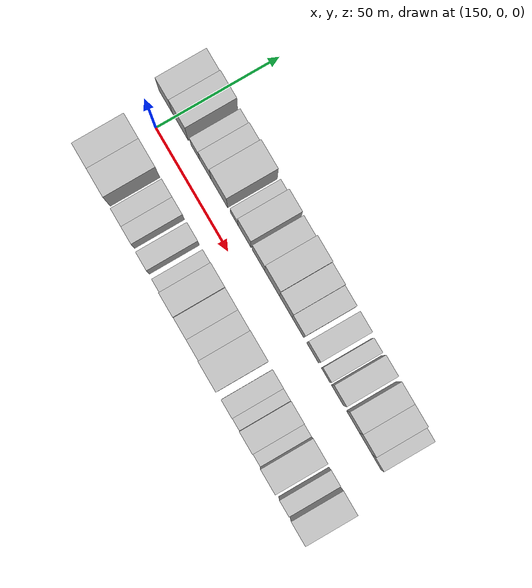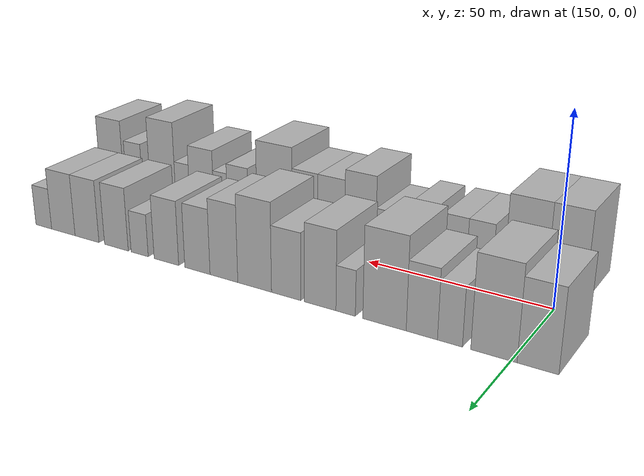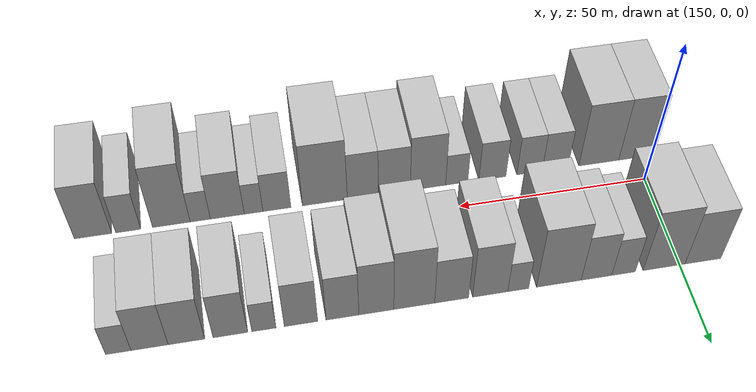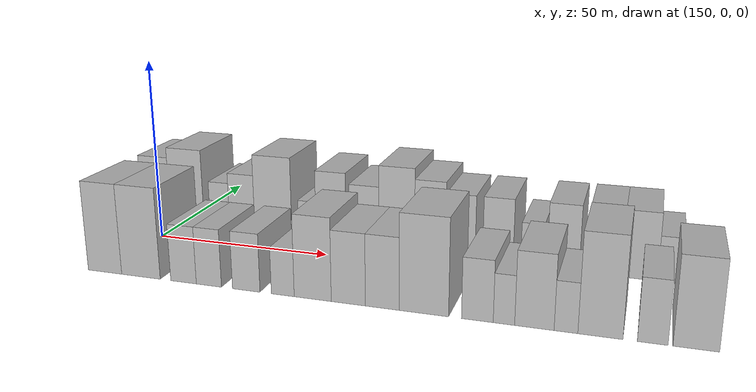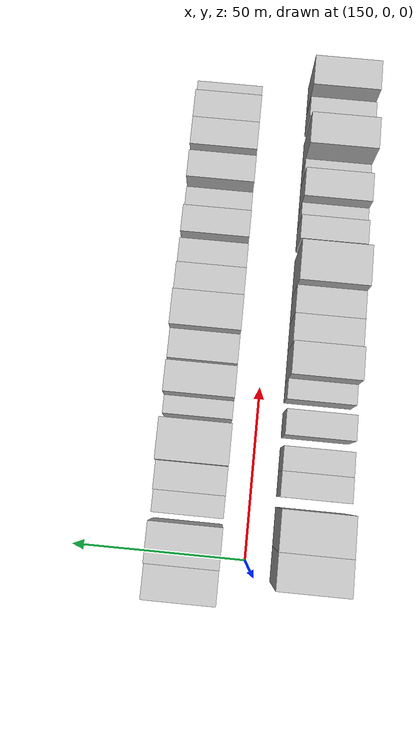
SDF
<sdf version="1.6">
 <world name="default">
  <model name="building_16">
   <static>1</static>
   <pose>143.8493 17.5000 0 0.000000 0.000000 1.570796</pose>
   <link name="link">
    <pose>0 0 10.50 0 0 0</pose>
    <collision name="collision"><geometry><box><size>20.0000 9.4239 21.0000</size></box></geometry></collision>
    <visual name="visual">
     <cast_shadows>0</cast_shadows>
     <geometry><box><size>20.0000 9.4239 21.0000</size></box></geometry>
     <material>
      <script>
       <uri>model://HANNAS_wall/materials/scripts</uri>
       <uri>model://HANNAS_wall/materials/textures</uri>
       <name>vrc/HANNAS_wall</name>
      </script>
     </material>
    </visual>
   </link>
  </model>
  <model name="building_17">
   <static>1</static>
   <pose>154.0123 17.5000 0 0.000000 0.000000 1.570796</pose>
   <link name="link">
    <pose>0 0 12.00 0 0 0</pose>
    <collision name="collision"><geometry><box><size>20.0000 10.9021 24.0000</size></box></geometry></collision>
    <visual name="visual">
     <cast_shadows>0</cast_shadows>
     <geometry><box><size>20.0000 10.9021 24.0000</size></box></geometry>
     <material>
      <script>
       <uri>model://HANNAS_wall/materials/scripts</uri>
       <uri>model://HANNAS_wall/materials/textures</uri>
       <name>vrc/HANNAS_wall</name>
      </script>
     </material>
    </visual>
   </link>
  </model>
  <model name="building_18">
   <static>1</static>
   <pose>164.5241 17.5000 0 0.000000 0.000000 1.570796</pose>
   <link name="link">
    <pose>0 0 7.50 0 0 0</pose>
    <collision name="collision"><geometry><box><size>20.0000 6.1215 15.0000</size></box></geometry></collision>
    <visual name="visual">
     <cast_shadows>0</cast_shadows>
     <geometry><box><size>20.0000 6.1215 15.0000</size></box></geometry>
     <material>
      <script>
       <uri>model://HANNAS_wall/materials/scripts</uri>
       <uri>model://HANNAS_wall/materials/textures</uri>
       <name>vrc/HANNAS_wall</name>
      </script>
     </material>
    </visual>
   </link>
  </model>
  <model name="building_19">
   <static>1</static>
   <pose>171.5248 17.5000 0 0.000000 0.000000 1.570796</pose>
   <link name="link">
    <pose>0 0 9.00 0 0 0</pose>
    <collision name="collision"><geometry><box><size>20.0000 7.8799 18.0000</size></box></geometry></collision>
    <visual name="visual">
     <cast_shadows>0</cast_shadows>
     <geometry><box><size>20.0000 7.8799 18.0000</size></box></geometry>
     <material>
      <script>
       <uri>model://HANNAS_wall/materials/scripts</uri>
       <uri>model://HANNAS_wall/materials/textures</uri>
       <name>vrc/HANNAS_wall</name>
      </script>
     </material>
    </visual>
   </link>
  </model>
  <model name="building_20">
   <static>1</static>
   <pose>181.1410 17.5000 0 0.000000 0.000000 1.570796</pose>
   <link name="link">
    <pose>0 0 12.00 0 0 0</pose>
    <collision name="collision"><geometry><box><size>20.0000 11.3526 24.0000</size></box></geometry></collision>
    <visual name="visual">
     <cast_shadows>0</cast_shadows>
     <geometry><box><size>20.0000 11.3526 24.0000</size></box></geometry>
     <material>
      <script>
       <uri>model://HANNAS_wall/materials/scripts</uri>
       <uri>model://HANNAS_wall/materials/textures</uri>
       <name>vrc/HANNAS_wall</name>
      </script>
     </material>
    </visual>
   </link>
  </model>
  <model name="building_21">
   <static>1</static>
   <pose>191.4542 17.5000 0 0.000000 0.000000 1.570796</pose>
   <link name="link">
    <pose>0 0 6.00 0 0 0</pose>
    <collision name="collision"><geometry><box><size>20.0000 5.2737 12.0000</size></box></geometry></collision>
    <visual name="visual">
     <cast_shadows>0</cast_shadows>
     <geometry><box><size>20.0000 5.2737 12.0000</size></box></geometry>
     <material>
      <script>
       <uri>model://HANNAS_wall/materials/scripts</uri>
       <uri>model://HANNAS_wall/materials/textures</uri>
       <name>vrc/HANNAS_wall</name>
      </script>
     </material>
    </visual>
   </link>
  </model>
  <model name="building_22">
   <static>1</static>
   <pose>198.5105 17.5000 0 0.000000 0.000000 1.570796</pose>
   <link name="link">
    <pose>0 0 10.50 0 0 0</pose>
    <collision name="collision"><geometry><box><size>20.0000 8.8389 21.0000</size></box></geometry></collision>
    <visual name="visual">
     <cast_shadows>0</cast_shadows>
     <geometry><box><size>20.0000 8.8389 21.0000</size></box></geometry>
     <material>
      <script>
       <uri>model://HANNAS_wall/materials/scripts</uri>
       <uri>model://HANNAS_wall/materials/textures</uri>
       <name>vrc/HANNAS_wall</name>
      </script>
     </material>
    </visual>
   </link>
  </model>
  <model name="building_23">
   <static>1</static>
   <pose>208.1650 17.5000 0 0.000000 0.000000 1.570796</pose>
   <link name="link">
    <pose>0 0 9.00 0 0 0</pose>
    <collision name="collision"><geometry><box><size>20.0000 8.4702 18.0000</size></box></geometry></collision>
    <visual name="visual">
     <cast_shadows>0</cast_shadows>
     <geometry><box><size>20.0000 8.4702 18.0000</size></box></geometry>
     <material>
      <script>
       <uri>model://HANNAS_wall/materials/scripts</uri>
       <uri>model://HANNAS_wall/materials/textures</uri>
       <name>vrc/HANNAS_wall</name>
      </script>
     </material>
    </visual>
   </link>
  </model>
  <model name="building_24">
   <static>1</static>
   <pose>217.4503 17.5000 0 0.000000 0.000000 1.570796</pose>
   <link name="link">
    <pose>0 0 12.00 0 0 0</pose>
    <collision name="collision"><geometry><box><size>20.0000 10.1003 24.0000</size></box></geometry></collision>
    <visual name="visual">
     <cast_shadows>0</cast_shadows>
     <geometry><box><size>20.0000 10.1003 24.0000</size></box></geometry>
     <material>
      <script>
       <uri>model://HANNAS_wall/materials/scripts</uri>
       <uri>model://HANNAS_wall/materials/textures</uri>
       <name>vrc/HANNAS_wall</name>
      </script>
     </material>
    </visual>
   </link>
  </model>
  <model name="building_25">
   <static>1</static>
   <pose>226.7920 17.5000 0 0.000000 0.000000 1.570796</pose>
   <link name="link">
    <pose>0 0 10.50 0 0 0</pose>
    <collision name="collision"><geometry><box><size>20.0000 8.5831 21.0000</size></box></geometry></collision>
    <visual name="visual">
     <cast_shadows>0</cast_shadows>
     <geometry><box><size>20.0000 8.5831 21.0000</size></box></geometry>
     <material>
      <script>
       <uri>model://HANNAS_wall/materials/scripts</uri>
       <uri>model://HANNAS_wall/materials/textures</uri>
       <name>vrc/HANNAS_wall</name>
      </script>
     </material>
    </visual>
   </link>
  </model>
  <model name="building_26">
   <static>1</static>
   <pose>235.0983 17.5000 0 0.000000 0.000000 1.570796</pose>
   <link name="link">
    <pose>0 0 9.00 0 0 0</pose>
    <collision name="collision"><geometry><box><size>20.0000 8.0295 18.0000</size></box></geometry></collision>
    <visual name="visual">
     <cast_shadows>0</cast_shadows>
     <geometry><box><size>20.0000 8.0295 18.0000</size></box></geometry>
     <material>
      <script>
       <uri>model://HANNAS_wall/materials/scripts</uri>
       <uri>model://HANNAS_wall/materials/textures</uri>
       <name>vrc/HANNAS_wall</name>
      </script>
     </material>
    </visual>
   </link>
  </model>
  <model name="building_27">
   <static>1</static>
   <pose>245.1571 17.5000 0 0.000000 0.000000 1.570796</pose>
   <link name="link">
    <pose>0 0 9.00 0 0 0</pose>
    <collision name="collision"><geometry><box><size>20.0000 8.0883 18.0000</size></box></geometry></collision>
    <visual name="visual">
     <cast_shadows>0</cast_shadows>
     <geometry><box><size>20.0000 8.0883 18.0000</size></box></geometry>
     <material>
      <script>
       <uri>model://HANNAS_wall/materials/scripts</uri>
       <uri>model://HANNAS_wall/materials/textures</uri>
       <name>vrc/HANNAS_wall</name>
      </script>
     </material>
    </visual>
   </link>
  </model>
  <model name="building_28">
   <static>1</static>
   <pose>254.1018 17.5000 0 0.000000 0.000000 1.570796</pose>
   <link name="link">
    <pose>0 0 6.00 0 0 0</pose>
    <collision name="collision"><geometry><box><size>20.0000 5.8010 12.0000</size></box></geometry></collision>
    <visual name="visual">
     <cast_shadows>0</cast_shadows>
     <geometry><box><size>20.0000 5.8010 12.0000</size></box></geometry>
     <material>
      <script>
       <uri>model://HANNAS_wall/materials/scripts</uri>
       <uri>model://HANNAS_wall/materials/textures</uri>
       <name>vrc/HANNAS_wall</name>
      </script>
     </material>
    </visual>
   </link>
  </model>
  <model name="building_29">
   <static>1</static>
   <pose>262.1307 17.5000 0 0.000000 0.000000 1.570796</pose>
   <link name="link">
    <pose>0 0 9.00 0 0 0</pose>
    <collision name="collision"><geometry><box><size>20.0000 8.2567 18.0000</size></box></geometry></collision>
    <visual name="visual">
     <cast_shadows>0</cast_shadows>
     <geometry><box><size>20.0000 8.2567 18.0000</size></box></geometry>
     <material>
      <script>
       <uri>model://HANNAS_wall/materials/scripts</uri>
       <uri>model://HANNAS_wall/materials/textures</uri>
       <name>vrc/HANNAS_wall</name>
      </script>
     </material>
    </visual>
   </link>
  </model>
  <model name="building_30">
   <static>1</static>
   <pose>272.5766 17.5000 0 0.000000 0.000000 1.570796</pose>
   <link name="link">
    <pose>0 0 9.00 0 0 0</pose>
    <collision name="collision"><geometry><box><size>20.0000 8.6352 18.0000</size></box></geometry></collision>
    <visual name="visual">
     <cast_shadows>0</cast_shadows>
     <geometry><box><size>20.0000 8.6352 18.0000</size></box></geometry>
     <material>
      <script>
       <uri>model://HANNAS_wall/materials/scripts</uri>
       <uri>model://HANNAS_wall/materials/textures</uri>
       <name>vrc/HANNAS_wall</name>
      </script>
     </material>
    </visual>
   </link>
  </model>
  <model name="building_31">
   <static>1</static>
   <pose>281.2514 17.5000 0 0.000000 0.000000 1.570796</pose>
   <link name="link">
    <pose>0 0 9.00 0 0 0</pose>
    <collision name="collision"><geometry><box><size>20.0000 8.7143 18.0000</size></box></geometry></collision>
    <visual name="visual">
     <cast_shadows>0</cast_shadows>
     <geometry><box><size>20.0000 8.7143 18.0000</size></box></geometry>
     <material>
      <script>
       <uri>model://HANNAS_wall/materials/scripts</uri>
       <uri>model://HANNAS_wall/materials/textures</uri>
       <name>vrc/HANNAS_wall</name>
      </script>
     </material>
    </visual>
   </link>
  </model>
  <model name="building_32">
   <static>1</static>
   <pose>288.5877 17.5000 0 0.000000 0.000000 1.570796</pose>
   <link name="link">
    <pose>0 0 6.00 0 0 0</pose>
    <collision name="collision"><geometry><box><size>20.0000 5.9582 12.0000</size></box></geometry></collision>
    <visual name="visual">
     <cast_shadows>0</cast_shadows>
     <geometry><box><size>20.0000 5.9582 12.0000</size></box></geometry>
     <material>
      <script>
       <uri>model://HANNAS_wall/materials/scripts</uri>
       <uri>model://HANNAS_wall/materials/textures</uri>
       <name>vrc/HANNAS_wall</name>
      </script>
     </material>
    </visual>
   </link>
  </model>
  <model name="building_49">
   <static>1</static>
   <pose>149.7753 -17.5000 0 0.000000 0.000000 1.570796</pose>
   <link name="link">
    <pose>0 0 12.00 0 0 0</pose>
    <collision name="collision"><geometry><box><size>20.0000 9.8453 24.0000</size></box></geometry></collision>
    <visual name="visual">
     <cast_shadows>0</cast_shadows>
     <geometry><box><size>20.0000 9.8453 24.0000</size></box></geometry>
     <material>
      <script>
       <uri>model://HANNAS_wall/materials/scripts</uri>
       <uri>model://HANNAS_wall/materials/textures</uri>
       <name>vrc/HANNAS_wall</name>
      </script>
     </material>
    </visual>
   </link>
  </model>
  <model name="building_50">
   <static>1</static>
   <pose>160.2455 -17.5000 0 0.000000 0.000000 1.570796</pose>
   <link name="link">
    <pose>0 0 12.00 0 0 0</pose>
    <collision name="collision"><geometry><box><size>20.0000 11.0951 24.0000</size></box></geometry></collision>
    <visual name="visual">
     <cast_shadows>0</cast_shadows>
     <geometry><box><size>20.0000 11.0951 24.0000</size></box></geometry>
     <material>
      <script>
       <uri>model://HANNAS_wall/materials/scripts</uri>
       <uri>model://HANNAS_wall/materials/textures</uri>
       <name>vrc/HANNAS_wall</name>
      </script>
     </material>
    </visual>
   </link>
  </model>
  <model name="building_51">
   <static>1</static>
   <pose>172.3615 -17.5000 0 0.000000 0.000000 1.570796</pose>
   <link name="link">
    <pose>0 0 7.50 0 0 0</pose>
    <collision name="collision"><geometry><box><size>20.0000 7.1368 15.0000</size></box></geometry></collision>
    <visual name="visual">
     <cast_shadows>0</cast_shadows>
     <geometry><box><size>20.0000 7.1368 15.0000</size></box></geometry>
     <material>
      <script>
       <uri>model://HANNAS_wall/materials/scripts</uri>
       <uri>model://HANNAS_wall/materials/textures</uri>
       <name>vrc/HANNAS_wall</name>
      </script>
     </material>
    </visual>
   </link>
  </model>
  <model name="building_52">
   <static>1</static>
   <pose>179.3857 -17.5000 0 0.000000 0.000000 1.570796</pose>
   <link name="link">
    <pose>0 0 7.50 0 0 0</pose>
    <collision name="collision"><geometry><box><size>20.0000 6.9116 15.0000</size></box></geometry></collision>
    <visual name="visual">
     <cast_shadows>0</cast_shadows>
     <geometry><box><size>20.0000 6.9116 15.0000</size></box></geometry>
     <material>
      <script>
       <uri>model://HANNAS_wall/materials/scripts</uri>
       <uri>model://HANNAS_wall/materials/textures</uri>
       <name>vrc/HANNAS_wall</name>
      </script>
     </material>
    </visual>
   </link>
  </model>
  <model name="building_53">
   <static>1</static>
   <pose>189.5182 -17.5000 0 0.000000 0.000000 1.570796</pose>
   <link name="link">
    <pose>0 0 7.50 0 0 0</pose>
    <collision name="collision"><geometry><box><size>20.0000 7.3535 15.0000</size></box></geometry></collision>
    <visual name="visual">
     <cast_shadows>0</cast_shadows>
     <geometry><box><size>20.0000 7.3535 15.0000</size></box></geometry>
     <material>
      <script>
       <uri>model://HANNAS_wall/materials/scripts</uri>
       <uri>model://HANNAS_wall/materials/textures</uri>
       <name>vrc/HANNAS_wall</name>
      </script>
     </material>
    </visual>
   </link>
  </model>
  <model name="building_54">
   <static>1</static>
   <pose>199.1789 -17.5000 0 0.000000 0.000000 1.570796</pose>
   <link name="link">
    <pose>0 0 6.00 0 0 0</pose>
    <collision name="collision"><geometry><box><size>20.0000 5.9679 12.0000</size></box></geometry></collision>
    <visual name="visual">
     <cast_shadows>0</cast_shadows>
     <geometry><box><size>20.0000 5.9679 12.0000</size></box></geometry>
     <material>
      <script>
       <uri>model://HANNAS_wall/materials/scripts</uri>
       <uri>model://HANNAS_wall/materials/textures</uri>
       <name>vrc/HANNAS_wall</name>
      </script>
     </material>
    </visual>
   </link>
  </model>
  <model name="building_55">
   <static>1</static>
   <pose>206.9061 -17.5000 0 0.000000 0.000000 1.570796</pose>
   <link name="link">
    <pose>0 0 10.50 0 0 0</pose>
    <collision name="collision"><geometry><box><size>20.0000 9.4864 21.0000</size></box></geometry></collision>
    <visual name="visual">
     <cast_shadows>0</cast_shadows>
     <geometry><box><size>20.0000 9.4864 21.0000</size></box></geometry>
     <material>
      <script>
       <uri>model://HANNAS_wall/materials/scripts</uri>
       <uri>model://HANNAS_wall/materials/textures</uri>
       <name>vrc/HANNAS_wall</name>
      </script>
     </material>
    </visual>
   </link>
  </model>
  <model name="building_56">
   <static>1</static>
   <pose>215.9079 -17.5000 0 0.000000 0.000000 1.570796</pose>
   <link name="link">
    <pose>0 0 9.00 0 0 0</pose>
    <collision name="collision"><geometry><box><size>20.0000 8.5171 18.0000</size></box></geometry></collision>
    <visual name="visual">
     <cast_shadows>0</cast_shadows>
     <geometry><box><size>20.0000 8.5171 18.0000</size></box></geometry>
     <material>
      <script>
       <uri>model://HANNAS_wall/materials/scripts</uri>
       <uri>model://HANNAS_wall/materials/textures</uri>
       <name>vrc/HANNAS_wall</name>
      </script>
     </material>
    </visual>
   </link>
  </model>
  <model name="building_57">
   <static>1</static>
   <pose>224.2815 -17.5000 0 0.000000 0.000000 1.570796</pose>
   <link name="link">
    <pose>0 0 9.00 0 0 0</pose>
    <collision name="collision"><geometry><box><size>20.0000 8.2300 18.0000</size></box></geometry></collision>
    <visual name="visual">
     <cast_shadows>0</cast_shadows>
     <geometry><box><size>20.0000 8.2300 18.0000</size></box></geometry>
     <material>
      <script>
       <uri>model://HANNAS_wall/materials/scripts</uri>
       <uri>model://HANNAS_wall/materials/textures</uri>
       <name>vrc/HANNAS_wall</name>
      </script>
     </material>
    </visual>
   </link>
  </model>
  <model name="building_58">
   <static>1</static>
   <pose>234.2946 -17.5000 0 0.000000 0.000000 1.570796</pose>
   <link name="link">
    <pose>0 0 12.00 0 0 0</pose>
    <collision name="collision"><geometry><box><size>20.0000 11.7963 24.0000</size></box></geometry></collision>
    <visual name="visual">
     <cast_shadows>0</cast_shadows>
     <geometry><box><size>20.0000 11.7963 24.0000</size></box></geometry>
     <material>
      <script>
       <uri>model://HANNAS_wall/materials/scripts</uri>
       <uri>model://HANNAS_wall/materials/textures</uri>
       <name>vrc/HANNAS_wall</name>
      </script>
     </material>
    </visual>
   </link>
  </model>
  <model name="building_59">
   <static>1</static>
   <pose>246.8380 -17.5000 0 0.000000 0.000000 1.570796</pose>
   <link name="link">
    <pose>0 0 7.50 0 0 0</pose>
    <collision name="collision"><geometry><box><size>20.0000 7.2904 15.0000</size></box></geometry></collision>
    <visual name="visual">
     <cast_shadows>0</cast_shadows>
     <geometry><box><size>20.0000 7.2904 15.0000</size></box></geometry>
     <material>
      <script>
       <uri>model://HANNAS_wall/materials/scripts</uri>
       <uri>model://HANNAS_wall/materials/textures</uri>
       <name>vrc/HANNAS_wall</name>
      </script>
     </material>
    </visual>
   </link>
  </model>
  <model name="building_60">
   <static>1</static>
   <pose>252.9049 -17.5000 0 0.000000 0.000000 1.570796</pose>
   <link name="link">
    <pose>0 0 6.00 0 0 0</pose>
    <collision name="collision"><geometry><box><size>20.0000 4.8434 12.0000</size></box></geometry></collision>
    <visual name="visual">
     <cast_shadows>0</cast_shadows>
     <geometry><box><size>20.0000 4.8434 12.0000</size></box></geometry>
     <material>
      <script>
       <uri>model://HANNAS_wall/materials/scripts</uri>
       <uri>model://HANNAS_wall/materials/textures</uri>
       <name>vrc/HANNAS_wall</name>
      </script>
     </material>
    </visual>
   </link>
  </model>
  <model name="building_61">
   <static>1</static>
   <pose>259.6987 -17.5000 0 0.000000 0.000000 1.570796</pose>
   <link name="link">
    <pose>0 0 9.00 0 0 0</pose>
    <collision name="collision"><geometry><box><size>20.0000 8.7443 18.0000</size></box></geometry></collision>
    <visual name="visual">
     <cast_shadows>0</cast_shadows>
     <geometry><box><size>20.0000 8.7443 18.0000</size></box></geometry>
     <material>
      <script>
       <uri>model://HANNAS_wall/materials/scripts</uri>
       <uri>model://HANNAS_wall/materials/textures</uri>
       <name>vrc/HANNAS_wall</name>
      </script>
     </material>
    </visual>
   </link>
  </model>
  <model name="building_62">
   <static>1</static>
   <pose>266.6542 -17.5000 0 0.000000 0.000000 1.570796</pose>
   <link name="link">
    <pose>0 0 6.00 0 0 0</pose>
    <collision name="collision"><geometry><box><size>20.0000 5.1668 12.0000</size></box></geometry></collision>
    <visual name="visual">
     <cast_shadows>0</cast_shadows>
     <geometry><box><size>20.0000 5.1668 12.0000</size></box></geometry>
     <material>
      <script>
       <uri>model://HANNAS_wall/materials/scripts</uri>
       <uri>model://HANNAS_wall/materials/textures</uri>
       <name>vrc/HANNAS_wall</name>
      </script>
     </material>
    </visual>
   </link>
  </model>
  <model name="building_63">
   <static>1</static>
   <pose>274.0417 -17.5000 0 0.000000 0.000000 1.570796</pose>
   <link name="link">
    <pose>0 0 12.00 0 0 0</pose>
    <collision name="collision"><geometry><box><size>20.0000 9.6083 24.0000</size></box></geometry></collision>
    <visual name="visual">
     <cast_shadows>0</cast_shadows>
     <geometry><box><size>20.0000 9.6083 24.0000</size></box></geometry>
     <material>
      <script>
       <uri>model://HANNAS_wall/materials/scripts</uri>
       <uri>model://HANNAS_wall/materials/textures</uri>
       <name>vrc/HANNAS_wall</name>
      </script>
     </material>
    </visual>
   </link>
  </model>
  <model name="building_64">
   <static>1</static>
   <pose>285.0172 -17.5000 0 0.000000 0.000000 1.570796</pose>
   <link name="link">
    <pose>0 0 7.50 0 0 0</pose>
    <collision name="collision"><geometry><box><size>20.0000 6.3428 15.0000</size></box></geometry></collision>
    <visual name="visual">
     <cast_shadows>0</cast_shadows>
     <geometry><box><size>20.0000 6.3428 15.0000</size></box></geometry>
     <material>
      <script>
       <uri>model://HANNAS_wall/materials/scripts</uri>
       <uri>model://HANNAS_wall/materials/textures</uri>
       <name>vrc/HANNAS_wall</name>
      </script>
     </material>
    </visual>
   </link>
  </model>
  <model name="building_65">
   <static>1</static>
   <pose>293.8834 -17.5000 0 0.000000 0.000000 1.570796</pose>
   <link name="link">
    <pose>0 0 10.50 0 0 0</pose>
    <collision name="collision"><geometry><box><size>20.0000 9.3895 21.0000</size></box></geometry></collision>
    <visual name="visual">
     <cast_shadows>0</cast_shadows>
     <geometry><box><size>20.0000 9.3895 21.0000</size></box></geometry>
     <material>
      <script>
       <uri>model://HANNAS_wall/materials/scripts</uri>
       <uri>model://HANNAS_wall/materials/textures</uri>
       <name>vrc/HANNAS_wall</name>
      </script>
     </material>
    </visual>
   </link>
  </model>
 </world>
</sdf>
